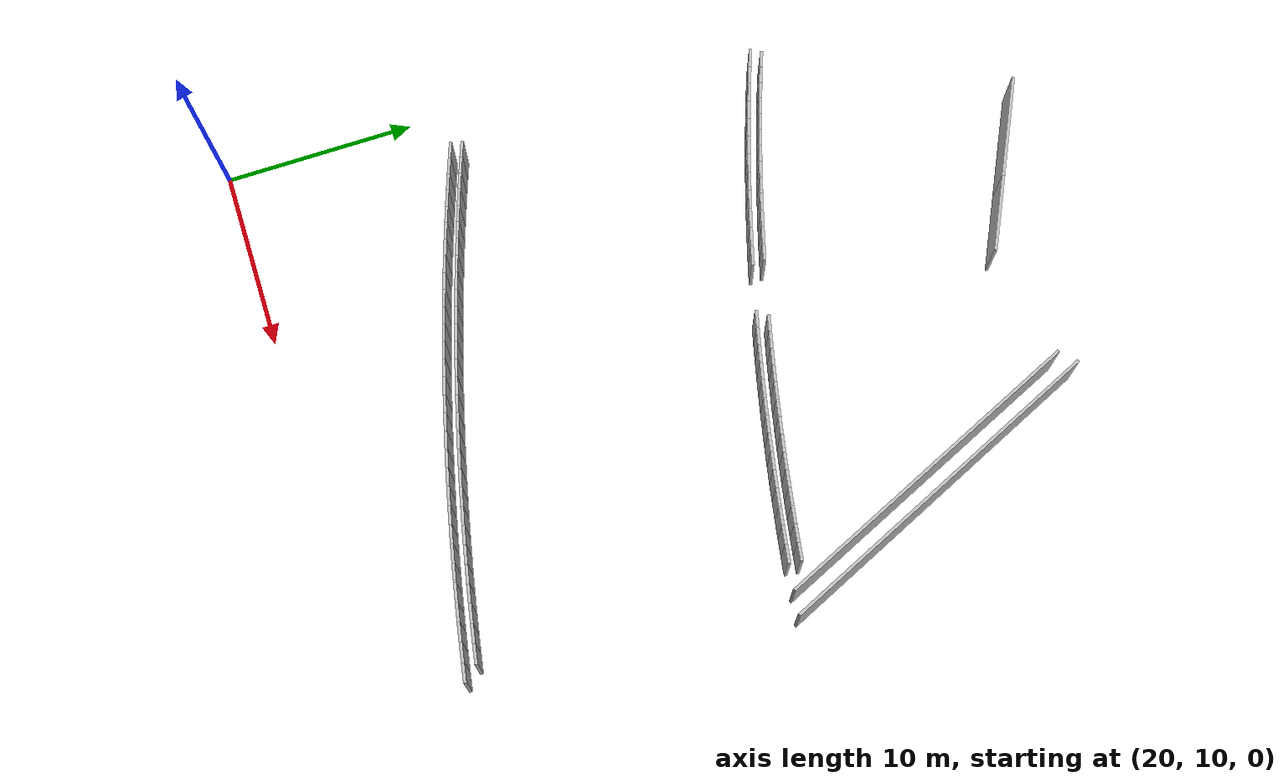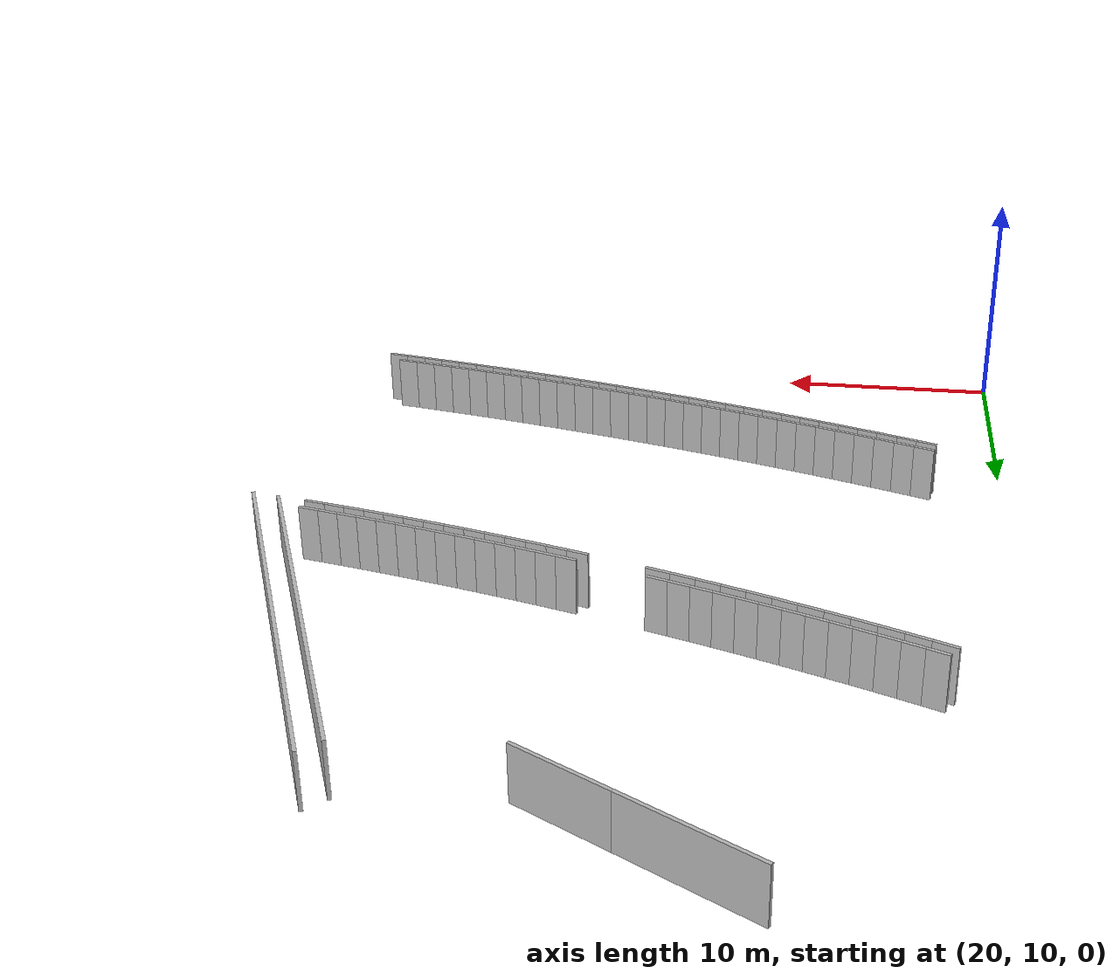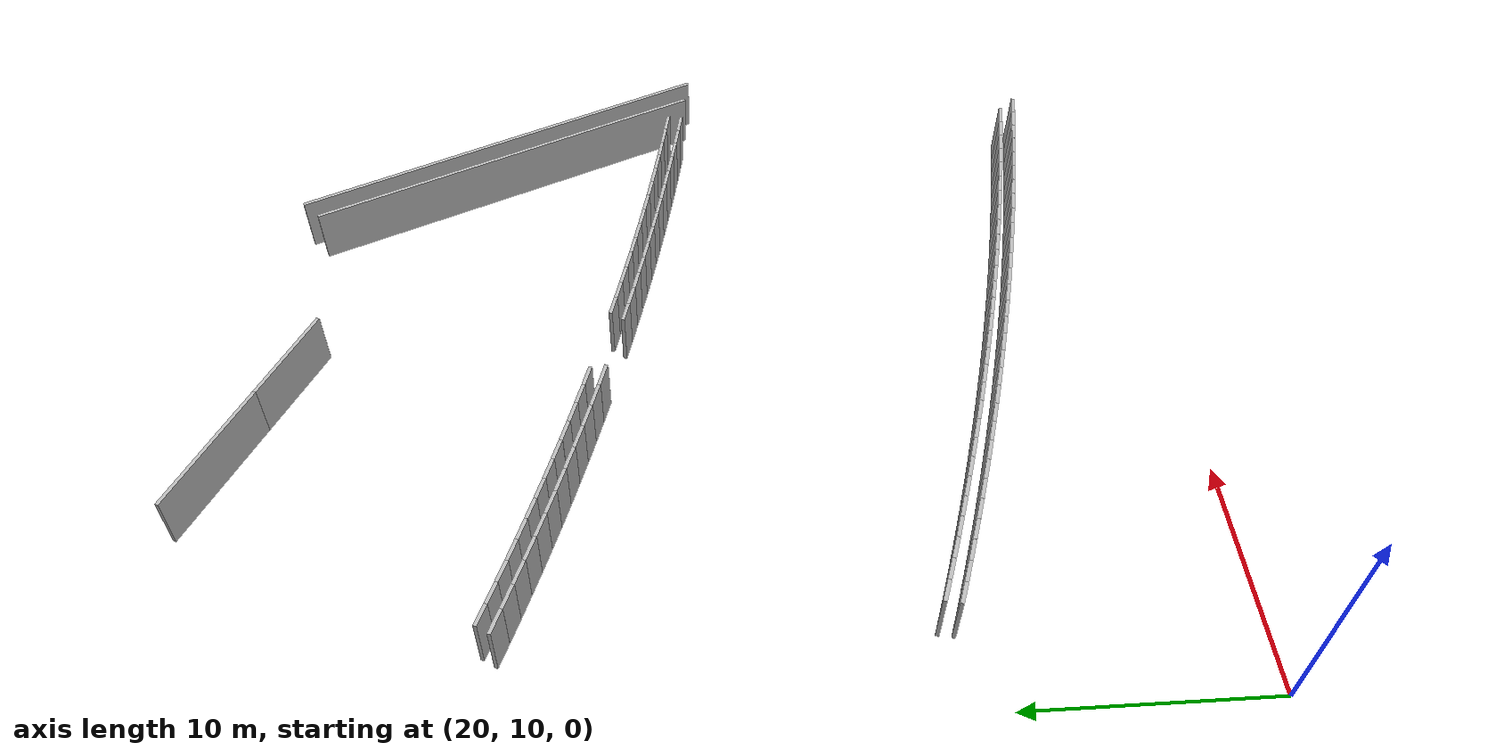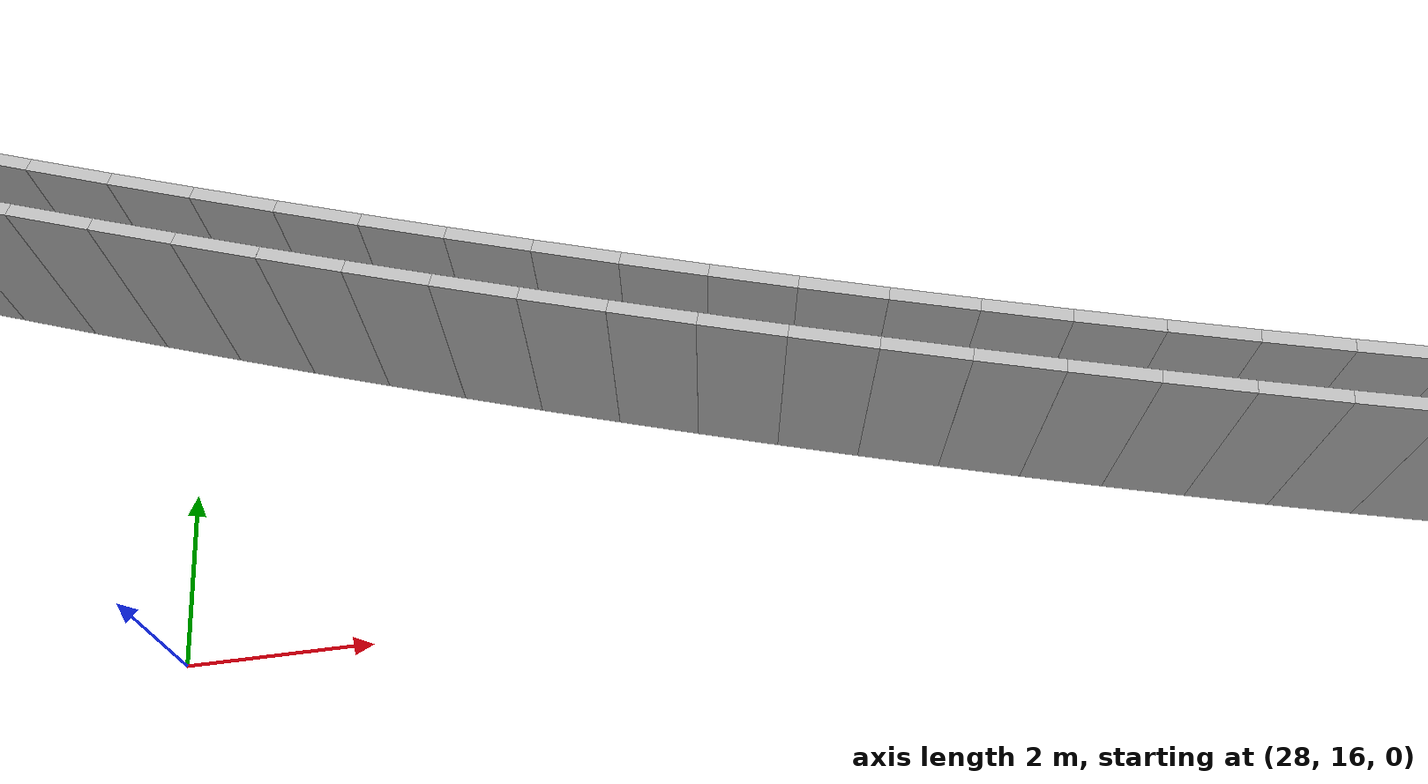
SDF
<sdf version="1.6">
 <model name="sps_0300">
  <static>1</static>
  <allow_auto_disable>0</allow_auto_disable>
  <link name="Wall55">
   <collision name="collision"><geometry><box><size>6.00747 0.15 2.5</size></box></geometry></collision>
   <visual name="visual">
    <geometry><box><size>6.00747 0.15 2.5</size></box></geometry>
    <transparency>0.0</transparency>
   </visual>
   <pose>31.8468 49.6369 1.25 0 0 -0.50919</pose>
  </link>
  <link name="Wall56">
   <collision name="collision"><geometry><box><size>4.34434 0.15 2.5</size></box></geometry></collision>
   <visual name="visual">
    <geometry><box><size>4.34434 0.15 2.5</size></box></geometry>
    <transparency>0.0</transparency>
   </visual>
   <pose>36.3661 47.1138 1.25 0 0 -0.509191</pose>
  </link>
  <link name="Wall9169">
   <collision name="collision"><geometry><box><size>0.950856 0.15 2.5</size></box></geometry></collision>
   <visual name="visual">
    <geometry><box><size>0.950856 0.15 2.5</size></box></geometry>
    <transparency>0.0</transparency>
   </visual>
   <pose>23.7422 38.8181 1.25 0 0 -0.389661</pose>
  </link>
  <link name="Wall9170">
   <collision name="collision"><geometry><box><size>0.950831 0.15 2.5</size></box></geometry></collision>
   <visual name="visual">
    <geometry><box><size>0.950831 0.15 2.5</size></box></geometry>
    <transparency>0.0</transparency>
   </visual>
   <pose>24.6229 38.4597 1.25 0 0 -0.383296</pose>
  </link>
  <link name="Wall9171">
   <collision name="collision"><geometry><box><size>0.950734 0.15 2.5</size></box></geometry></collision>
   <visual name="visual">
    <geometry><box><size>0.950734 0.15 2.5</size></box></geometry>
    <transparency>0.0</transparency>
   </visual>
   <pose>25.506 38.1072 1.25 0 0 -0.376286</pose>
  </link>
  <link name="Wall9172">
   <collision name="collision"><geometry><box><size>0.950793 0.15 2.5</size></box></geometry></collision>
   <visual name="visual">
    <geometry><box><size>0.950793 0.15 2.5</size></box></geometry>
    <transparency>0.0</transparency>
   </visual>
   <pose>26.3914 37.7608 1.25 0 0 -0.369575</pose>
  </link>
  <link name="Wall9173">
   <collision name="collision"><geometry><box><size>0.950746 0.15 2.5</size></box></geometry></collision>
   <visual name="visual">
    <geometry><box><size>0.950746 0.15 2.5</size></box></geometry>
    <transparency>0.0</transparency>
   </visual>
   <pose>27.2791 37.4203 1.25 0 0 -0.362993</pose>
  </link>
  <link name="Wall9174">
   <collision name="collision"><geometry><box><size>0.950933 0.15 2.5</size></box></geometry></collision>
   <visual name="visual">
    <geometry><box><size>0.950933 0.15 2.5</size></box></geometry>
    <transparency>0.0</transparency>
   </visual>
   <pose>28.1691 37.0856 1.25 0 0 -0.356404</pose>
  </link>
  <link name="Wall9175">
   <collision name="collision"><geometry><box><size>0.950692 0.15 2.5</size></box></geometry></collision>
   <visual name="visual">
    <geometry><box><size>0.950692 0.15 2.5</size></box></geometry>
    <transparency>0.0</transparency>
   </visual>
   <pose>29.0612 36.7569 1.25 0 0 -0.349588</pose>
  </link>
  <link name="Wall9176">
   <collision name="collision"><geometry><box><size>0.950766 0.15 2.5</size></box></geometry></collision>
   <visual name="visual">
    <geometry><box><size>0.950766 0.15 2.5</size></box></geometry>
    <transparency>0.0</transparency>
   </visual>
   <pose>29.9556 36.4343 1.25 0 0 -0.342804</pose>
  </link>
  <link name="Wall9177">
   <collision name="collision"><geometry><box><size>0.950789 0.15 2.5</size></box></geometry></collision>
   <visual name="visual">
    <geometry><box><size>0.950789 0.15 2.5</size></box></geometry>
    <transparency>0.0</transparency>
   </visual>
   <pose>30.8521 36.1177 1.25 0 0 -0.336123</pose>
  </link>
  <link name="Wall9178">
   <collision name="collision"><geometry><box><size>0.950912 0.15 2.5</size></box></geometry></collision>
   <visual name="visual">
    <geometry><box><size>0.950912 0.15 2.5</size></box></geometry>
    <transparency>0.0</transparency>
   </visual>
   <pose>31.7508 35.8071 1.25 0 0 -0.329423</pose>
  </link>
  <link name="Wall9179">
   <collision name="collision"><geometry><box><size>0.950884 0.15 2.5</size></box></geometry></collision>
   <visual name="visual">
    <geometry><box><size>0.950884 0.15 2.5</size></box></geometry>
    <transparency>0.0</transparency>
   </visual>
   <pose>32.6515 35.5025 1.25 0 0 -0.322725</pose>
  </link>
  <link name="Wall9180">
   <collision name="collision"><geometry><box><size>0.950744 0.15 2.5</size></box></geometry></collision>
   <visual name="visual">
    <geometry><box><size>0.950744 0.15 2.5</size></box></geometry>
    <transparency>0.0</transparency>
   </visual>
   <pose>33.5543 35.2039 1.25 0 0 -0.316147</pose>
  </link>
  <link name="Wall9181">
   <collision name="collision"><geometry><box><size>0.95088 0.15 2.5</size></box></geometry></collision>
   <visual name="visual">
    <geometry><box><size>0.95088 0.15 2.5</size></box></geometry>
    <transparency>0.0</transparency>
   </visual>
   <pose>34.4589 34.9114 1.25 0 0 -0.309287</pose>
  </link>
  <link name="Wall9246">
   <collision name="collision"><geometry><box><size>0.939736 0.15 2.5</size></box></geometry></collision>
   <visual name="visual">
    <geometry><box><size>0.939736 0.15 2.5</size></box></geometry>
    <transparency>0.0</transparency>
   </visual>
   <pose>23.5387 21.5267 1.25 0 0 -0.349276</pose>
  </link>
  <link name="Wall9247">
   <collision name="collision"><geometry><box><size>0.939467 0.15 2.5</size></box></geometry></collision>
   <visual name="visual">
    <geometry><box><size>0.939467 0.15 2.5</size></box></geometry>
    <transparency>0.0</transparency>
   </visual>
   <pose>24.4225 21.2077 1.25 0 0 -0.343509</pose>
  </link>
  <link name="Wall9248">
   <collision name="collision"><geometry><box><size>0.939864 0.15 2.5</size></box></geometry></collision>
   <visual name="visual">
    <geometry><box><size>0.939864 0.15 2.5</size></box></geometry>
    <transparency>0.0</transparency>
   </visual>
   <pose>25.3082 20.8939 1.25 0 0 -0.337502</pose>
  </link>
  <link name="Wall9249">
   <collision name="collision"><geometry><box><size>0.939601 0.15 2.5</size></box></geometry></collision>
   <visual name="visual">
    <geometry><box><size>0.939601 0.15 2.5</size></box></geometry>
    <transparency>0.0</transparency>
   </visual>
   <pose>26.1959 20.5853 1.25 0 0 -0.331755</pose>
  </link>
  <link name="Wall9250">
   <collision name="collision"><geometry><box><size>0.93958 0.15 2.5</size></box></geometry></collision>
   <visual name="visual">
    <geometry><box><size>0.93958 0.15 2.5</size></box></geometry>
    <transparency>0.0</transparency>
   </visual>
   <pose>27.0851 20.282 1.25 0 0 -0.325654</pose>
  </link>
  <link name="Wall9251">
   <collision name="collision"><geometry><box><size>0.939769 0.15 2.5</size></box></geometry></collision>
   <visual name="visual">
    <geometry><box><size>0.939769 0.15 2.5</size></box></geometry>
    <transparency>0.0</transparency>
   </visual>
   <pose>27.9763 19.9841 1.25 0 0 -0.319491</pose>
  </link>
  <link name="Wall9252">
   <collision name="collision"><geometry><box><size>0.939661 0.15 2.5</size></box></geometry></collision>
   <visual name="visual">
    <geometry><box><size>0.939661 0.15 2.5</size></box></geometry>
    <transparency>0.0</transparency>
   </visual>
   <pose>28.8693 19.6915 1.25 0 0 -0.313719</pose>
  </link>
  <link name="Wall9253">
   <collision name="collision"><geometry><box><size>0.939763 0.15 2.5</size></box></geometry></collision>
   <visual name="visual">
    <geometry><box><size>0.939763 0.15 2.5</size></box></geometry>
    <transparency>0.0</transparency>
   </visual>
   <pose>29.7641 19.4042 1.25 0 0 -0.307681</pose>
  </link>
  <link name="Wall9254">
   <collision name="collision"><geometry><box><size>0.939661 0.15 2.5</size></box></geometry></collision>
   <visual name="visual">
    <geometry><box><size>0.939661 0.15 2.5</size></box></geometry>
    <transparency>0.0</transparency>
   </visual>
   <pose>30.6605 19.1222 1.25 0 0 -0.301928</pose>
  </link>
  <link name="Wall9255">
   <collision name="collision"><geometry><box><size>0.93987 0.15 2.5</size></box></geometry></collision>
   <visual name="visual">
    <geometry><box><size>0.93987 0.15 2.5</size></box></geometry>
    <transparency>0.0</transparency>
   </visual>
   <pose>31.5586 18.8455 1.25 0 0 -0.295811</pose>
  </link>
  <link name="Wall9256">
   <collision name="collision"><geometry><box><size>0.939605 0.15 2.5</size></box></geometry></collision>
   <visual name="visual">
    <geometry><box><size>0.939605 0.15 2.5</size></box></geometry>
    <transparency>0.0</transparency>
   </visual>
   <pose>32.4583 18.5742 1.25 0 0 -0.289926</pose>
  </link>
  <link name="Wall9257">
   <collision name="collision"><geometry><box><size>0.939834 0.15 2.5</size></box></geometry></collision>
   <visual name="visual">
    <geometry><box><size>0.939834 0.15 2.5</size></box></geometry>
    <transparency>0.0</transparency>
   </visual>
   <pose>33.3595 18.3082 1.25 0 0 -0.284098</pose>
  </link>
  <link name="Wall9258">
   <collision name="collision"><geometry><box><size>0.939491 0.15 2.5</size></box></geometry></collision>
   <visual name="visual">
    <geometry><box><size>0.939491 0.15 2.5</size></box></geometry>
    <transparency>0.0</transparency>
   </visual>
   <pose>34.2624 18.0476 1.25 0 0 -0.277916</pose>
  </link>
  <link name="Wall9259">
   <collision name="collision"><geometry><box><size>0.939802 0.15 2.5</size></box></geometry></collision>
   <visual name="visual">
    <geometry><box><size>0.939802 0.15 2.5</size></box></geometry>
    <transparency>0.0</transparency>
   </visual>
   <pose>35.1667 17.7924 1.25 0 0 -0.272153</pose>
  </link>
  <link name="Wall9260">
   <collision name="collision"><geometry><box><size>0.939604 0.15 2.5</size></box></geometry></collision>
   <visual name="visual">
    <geometry><box><size>0.939604 0.15 2.5</size></box></geometry>
    <transparency>0.0</transparency>
   </visual>
   <pose>36.0726 17.5426 1.25 0 0 -0.266013</pose>
  </link>
  <link name="Wall9261">
   <collision name="collision"><geometry><box><size>0.93983 0.15 2.5</size></box></geometry></collision>
   <visual name="visual">
    <geometry><box><size>0.93983 0.15 2.5</size></box></geometry>
    <transparency>0.0</transparency>
   </visual>
   <pose>36.9799 17.2982 1.25 0 0 -0.260163</pose>
  </link>
  <link name="Wall9262">
   <collision name="collision"><geometry><box><size>0.93966 0.15 2.5</size></box></geometry></collision>
   <visual name="visual">
    <geometry><box><size>0.93966 0.15 2.5</size></box></geometry>
    <transparency>0.0</transparency>
   </visual>
   <pose>37.8888 17.0591 1.25 0 0 -0.254368</pose>
  </link>
  <link name="Wall9263">
   <collision name="collision"><geometry><box><size>0.939594 0.15 2.5</size></box></geometry></collision>
   <visual name="visual">
    <geometry><box><size>0.939594 0.15 2.5</size></box></geometry>
    <transparency>0.0</transparency>
   </visual>
   <pose>38.7989 16.8254 1.25 0 0 -0.24835</pose>
  </link>
  <link name="Wall9264">
   <collision name="collision"><geometry><box><size>0.939903 0.15 2.5</size></box></geometry></collision>
   <visual name="visual">
    <geometry><box><size>0.939903 0.15 2.5</size></box></geometry>
    <transparency>0.0</transparency>
   </visual>
   <pose>39.7104 16.5971 1.25 0 0 -0.242443</pose>
  </link>
  <link name="Wall9265">
   <collision name="collision"><geometry><box><size>0.939505 0.15 2.5</size></box></geometry></collision>
   <visual name="visual">
    <geometry><box><size>0.939505 0.15 2.5</size></box></geometry>
    <transparency>0.0</transparency>
   </visual>
   <pose>40.6233 16.3743 1.25 0 0 -0.236328</pose>
  </link>
  <link name="Wall9266">
   <collision name="collision"><geometry><box><size>0.939629 0.15 2.5</size></box></geometry></collision>
   <visual name="visual">
    <geometry><box><size>0.939629 0.15 2.5</size></box></geometry>
    <transparency>0.0</transparency>
   </visual>
   <pose>41.5374 16.157 1.25 0 0 -0.230421</pose>
  </link>
  <link name="Wall9267">
   <collision name="collision"><geometry><box><size>0.939785 0.15 2.5</size></box></geometry></collision>
   <visual name="visual">
    <geometry><box><size>0.939785 0.15 2.5</size></box></geometry>
    <transparency>0.0</transparency>
   </visual>
   <pose>42.4529 15.9451 1.25 0 0 -0.224516</pose>
  </link>
  <link name="Wall9268">
   <collision name="collision"><geometry><box><size>0.939604 0.15 2.5</size></box></geometry></collision>
   <visual name="visual">
    <geometry><box><size>0.939604 0.15 2.5</size></box></geometry>
    <transparency>0.0</transparency>
   </visual>
   <pose>43.3697 15.7386 1.25 0 0 -0.218634</pose>
  </link>
  <link name="Wall9269">
   <collision name="collision"><geometry><box><size>0.939753 0.15 2.5</size></box></geometry></collision>
   <visual name="visual">
    <geometry><box><size>0.939753 0.15 2.5</size></box></geometry>
    <transparency>0.0</transparency>
   </visual>
   <pose>44.2876 15.5375 1.25 0 0 -0.212681</pose>
  </link>
  <link name="Wall9270">
   <collision name="collision"><geometry><box><size>0.939612 0.15 2.5</size></box></geometry></collision>
   <visual name="visual">
    <geometry><box><size>0.939612 0.15 2.5</size></box></geometry>
    <transparency>0.0</transparency>
   </visual>
   <pose>45.2067 15.3419 1.25 0 0 -0.20667</pose>
  </link>
  <link name="Wall9271">
   <collision name="collision"><geometry><box><size>0.939649 0.15 2.5</size></box></geometry></collision>
   <visual name="visual">
    <geometry><box><size>0.939649 0.15 2.5</size></box></geometry>
    <transparency>0.0</transparency>
   </visual>
   <pose>46.1269 15.1518 1.25 0 0 -0.200759</pose>
  </link>
  <link name="Wall9272">
   <collision name="collision"><geometry><box><size>0.939754 0.15 2.5</size></box></geometry></collision>
   <visual name="visual">
    <geometry><box><size>0.939754 0.15 2.5</size></box></geometry>
    <transparency>0.0</transparency>
   </visual>
   <pose>47.0482 14.9672 1.25 0 0 -0.194708</pose>
  </link>
  <link name="Wall9273">
   <collision name="collision"><geometry><box><size>0.939738 0.15 2.5</size></box></geometry></collision>
   <visual name="visual">
    <geometry><box><size>0.939738 0.15 2.5</size></box></geometry>
    <transparency>0.0</transparency>
   </visual>
   <pose>47.9708 14.7881 1.25 0 0 -0.188823</pose>
  </link>
  <link name="Wall9274">
   <collision name="collision"><geometry><box><size>0.939671 0.15 2.5</size></box></geometry></collision>
   <visual name="visual">
    <geometry><box><size>0.939671 0.15 2.5</size></box></geometry>
    <transparency>0.0</transparency>
   </visual>
   <pose>48.8943 14.6145 1.25 0 0 -0.182822</pose>
  </link>
  <link name="Wall9275">
   <collision name="collision"><geometry><box><size>0.939873 0.15 2.5</size></box></geometry></collision>
   <visual name="visual">
    <geometry><box><size>0.939873 0.15 2.5</size></box></geometry>
    <transparency>0.0</transparency>
   </visual>
   <pose>49.8189 14.4463 1.25 0 0 -0.177106</pose>
  </link>
  <link name="Wall9284">
   <collision name="collision"><geometry><box><size>0.927808 0.15 2.5</size></box></geometry></collision>
   <visual name="visual">
    <geometry><box><size>0.927808 0.15 2.5</size></box></geometry>
    <transparency>0.0</transparency>
   </visual>
   <pose>37.8124 33.2596 1.25 0 0 -0.28336</pose>
  </link>
  <link name="Wall9285">
   <collision name="collision"><geometry><box><size>0.928191 0.15 2.5</size></box></geometry></collision>
   <visual name="visual">
    <geometry><box><size>0.928191 0.15 2.5</size></box></geometry>
    <transparency>0.0</transparency>
   </visual>
   <pose>38.7042 33.003 1.25 0 0 -0.276945</pose>
  </link>
  <link name="Wall9286">
   <collision name="collision"><geometry><box><size>0.927926 0.15 2.5</size></box></geometry></collision>
   <visual name="visual">
    <geometry><box><size>0.927926 0.15 2.5</size></box></geometry>
    <transparency>0.0</transparency>
   </visual>
   <pose>39.5978 32.7522 1.25 0 0 -0.270331</pose>
  </link>
  <link name="Wall9287">
   <collision name="collision"><geometry><box><size>0.928103 0.15 2.5</size></box></geometry></collision>
   <visual name="visual">
    <geometry><box><size>0.928103 0.15 2.5</size></box></geometry>
    <transparency>0.0</transparency>
   </visual>
   <pose>40.4929 32.5073 1.25 0 0 -0.263801</pose>
  </link>
  <link name="Wall9288">
   <collision name="collision"><geometry><box><size>0.927965 0.15 2.5</size></box></geometry></collision>
   <visual name="visual">
    <geometry><box><size>0.927965 0.15 2.5</size></box></geometry>
    <transparency>0.0</transparency>
   </visual>
   <pose>41.3896 32.2682 1.25 0 0 -0.257374</pose>
  </link>
  <link name="Wall9289">
   <collision name="collision"><geometry><box><size>0.928221 0.15 2.5</size></box></geometry></collision>
   <visual name="visual">
    <geometry><box><size>0.928221 0.15 2.5</size></box></geometry>
    <transparency>0.0</transparency>
   </visual>
   <pose>42.2879 32.0349 1.25 0 0 -0.250848</pose>
  </link>
  <link name="Wall9290">
   <collision name="collision"><geometry><box><size>0.927939 0.15 2.5</size></box></geometry></collision>
   <visual name="visual">
    <geometry><box><size>0.927939 0.15 2.5</size></box></geometry>
    <transparency>0.0</transparency>
   </visual>
   <pose>43.1876 31.8075 1.25 0 0 -0.244277</pose>
  </link>
  <link name="Wall9291">
   <collision name="collision"><geometry><box><size>0.927903 0.15 2.5</size></box></geometry></collision>
   <visual name="visual">
    <geometry><box><size>0.927903 0.15 2.5</size></box></geometry>
    <transparency>0.0</transparency>
   </visual>
   <pose>44.0887 31.586 1.25 0 0 -0.237784</pose>
  </link>
  <link name="Wall9292">
   <collision name="collision"><geometry><box><size>0.928117 0.15 2.5</size></box></geometry></collision>
   <visual name="visual">
    <geometry><box><size>0.928117 0.15 2.5</size></box></geometry>
    <transparency>0.0</transparency>
   </visual>
   <pose>44.9914 31.3704 1.25 0 0 -0.231102</pose>
  </link>
  <link name="Wall9293">
   <collision name="collision"><geometry><box><size>0.928128 0.15 2.5</size></box></geometry></collision>
   <visual name="visual">
    <geometry><box><size>0.928128 0.15 2.5</size></box></geometry>
    <transparency>0.0</transparency>
   </visual>
   <pose>45.8955 31.1607 1.25 0 0 -0.224753</pose>
  </link>
  <link name="Wall9294">
   <collision name="collision"><geometry><box><size>0.928032 0.15 2.5</size></box></geometry></collision>
   <visual name="visual">
    <geometry><box><size>0.928032 0.15 2.5</size></box></geometry>
    <transparency>0.0</transparency>
   </visual>
   <pose>46.8009 30.9568 1.25 0 0 -0.218305</pose>
  </link>
  <link name="Wall9295">
   <collision name="collision"><geometry><box><size>0.927889 0.15 2.5</size></box></geometry></collision>
   <visual name="visual">
    <geometry><box><size>0.927889 0.15 2.5</size></box></geometry>
    <transparency>0.0</transparency>
   </visual>
   <pose>47.7075 30.7588 1.25 0 0 -0.211741</pose>
  </link>
  <link name="Wall9296">
   <collision name="collision"><geometry><box><size>0.927892 0.15 2.5</size></box></geometry></collision>
   <visual name="visual">
    <geometry><box><size>0.927892 0.15 2.5</size></box></geometry>
    <transparency>0.0</transparency>
   </visual>
   <pose>48.6153 30.5668 1.25 0 0 -0.205084</pose>
  </link>
  <link name="Wall9297">
   <collision name="collision"><geometry><box><size>0.928057 0.15 2.5</size></box></geometry></collision>
   <visual name="visual">
    <geometry><box><size>0.928057 0.15 2.5</size></box></geometry>
    <transparency>0.0</transparency>
   </visual>
   <pose>49.5244 30.3807 1.25 0 0 -0.198737</pose>
  </link>
  <link name="Wall12824">
   <collision name="collision"><geometry><box><size>19.0263 0.15 2.5</size></box></geometry></collision>
   <visual name="visual">
    <geometry><box><size>19.0263 0.15 2.5</size></box></geometry>
    <transparency>0.0</transparency>
   </visual>
   <pose>48.7869 38.6266 1.25 0 0 -1.18017</pose>
  </link>
  <link name="Wall16635">
   <collision name="collision"><geometry><box><size>18.0306 0.15 2.5</size></box></geometry></collision>
   <visual name="visual">
    <geometry><box><size>18.0306 0.15 2.5</size></box></geometry>
    <transparency>0.0</transparency>
   </visual>
   <pose>47.8064 38.3819 1.25 0 0 -1.18018</pose>
  </link>
  <link name="Wall19048">
   <collision name="collision"><geometry><box><size>1.06678 0.15 2.5</size></box></geometry></collision>
   <visual name="visual">
    <geometry><box><size>1.06678 0.15 2.5</size></box></geometry>
    <transparency>0.0</transparency>
   </visual>
   <pose>23.4436 38.2924 1.25 0 0 -0.390249</pose>
  </link>
  <link name="Wall19049">
   <collision name="collision"><geometry><box><size>1.06657 0.15 2.5</size></box></geometry></collision>
   <visual name="visual">
    <geometry><box><size>1.06657 0.15 2.5</size></box></geometry>
    <transparency>0.0</transparency>
   </visual>
   <pose>24.4315 37.8903 1.25 0 0 -0.382791</pose>
  </link>
  <link name="Wall19050">
   <collision name="collision"><geometry><box><size>1.0667 0.15 2.5</size></box></geometry></collision>
   <visual name="visual">
    <geometry><box><size>1.0667 0.15 2.5</size></box></geometry>
    <transparency>0.0</transparency>
   </visual>
   <pose>25.4224 37.4956 1.25 0 0 -0.375353</pose>
  </link>
  <link name="Wall19051">
   <collision name="collision"><geometry><box><size>1.06676 0.15 2.5</size></box></geometry></collision>
   <visual name="visual">
    <geometry><box><size>1.06676 0.15 2.5</size></box></geometry>
    <transparency>0.0</transparency>
   </visual>
   <pose>26.4164 37.1083 1.25 0 0 -0.367778</pose>
  </link>
  <link name="Wall19052">
   <collision name="collision"><geometry><box><size>1.06689 0.15 2.5</size></box></geometry></collision>
   <visual name="visual">
    <geometry><box><size>1.06689 0.15 2.5</size></box></geometry>
    <transparency>0.0</transparency>
   </visual>
   <pose>27.4133 36.7284 1.25 0 0 -0.360384</pose>
  </link>
  <link name="Wall19053">
   <collision name="collision"><geometry><box><size>1.06674 0.15 2.5</size></box></geometry></collision>
   <visual name="visual">
    <geometry><box><size>1.06674 0.15 2.5</size></box></geometry>
    <transparency>0.0</transparency>
   </visual>
   <pose>28.413 36.356 1.25 0 0 -0.352804</pose>
  </link>
  <link name="Wall19054">
   <collision name="collision"><geometry><box><size>1.0668 0.15 2.5</size></box></geometry></collision>
   <visual name="visual">
    <geometry><box><size>1.0668 0.15 2.5</size></box></geometry>
    <transparency>0.0</transparency>
   </visual>
   <pose>29.4154 35.9911 1.25 0 0 -0.345418</pose>
  </link>
  <link name="Wall19055">
   <collision name="collision"><geometry><box><size>1.06673 0.15 2.5</size></box></geometry></collision>
   <visual name="visual">
    <geometry><box><size>1.06673 0.15 2.5</size></box></geometry>
    <transparency>0.0</transparency>
   </visual>
   <pose>30.4205 35.6337 1.25 0 0 -0.337909</pose>
  </link>
  <link name="Wall19056">
   <collision name="collision"><geometry><box><size>1.06671 0.15 2.5</size></box></geometry></collision>
   <visual name="visual">
    <geometry><box><size>1.06671 0.15 2.5</size></box></geometry>
    <transparency>0.0</transparency>
   </visual>
   <pose>31.4282 35.2838 1.25 0 0 -0.330526</pose>
  </link>
  <link name="Wall19057">
   <collision name="collision"><geometry><box><size>1.06669 0.15 2.5</size></box></geometry></collision>
   <visual name="visual">
    <geometry><box><size>1.06669 0.15 2.5</size></box></geometry>
    <transparency>0.0</transparency>
   </visual>
   <pose>32.4384 34.9415 1.25 0 0 -0.3228</pose>
  </link>
  <link name="Wall19058">
   <collision name="collision"><geometry><box><size>1.06687 0.15 2.5</size></box></geometry></collision>
   <visual name="visual">
    <geometry><box><size>1.06687 0.15 2.5</size></box></geometry>
    <transparency>0.0</transparency>
   </visual>
   <pose>33.4513 34.6068 1.25 0 0 -0.315455</pose>
  </link>
  <link name="Wall19059">
   <collision name="collision"><geometry><box><size>1.06681 0.15 2.5</size></box></geometry></collision>
   <visual name="visual">
    <geometry><box><size>1.06681 0.15 2.5</size></box></geometry>
    <transparency>0.0</transparency>
   </visual>
   <pose>34.4668 34.2796 1.25 0 0 -0.308018</pose>
  </link>
  <link name="Wall24650">
   <collision name="collision"><geometry><box><size>0.945103 0.15 2.5</size></box></geometry></collision>
   <visual name="visual">
    <geometry><box><size>0.945103 0.15 2.5</size></box></geometry>
    <transparency>0.0</transparency>
   </visual>
   <pose>23.6682 22.1187 1.25 0 0 -0.349957</pose>
  </link>
  <link name="Wall24651">
   <collision name="collision"><geometry><box><size>0.945092 0.15 2.5</size></box></geometry></collision>
   <visual name="visual">
    <geometry><box><size>0.945092 0.15 2.5</size></box></geometry>
    <transparency>0.0</transparency>
   </visual>
   <pose>24.557 21.7974 1.25 0 0 -0.343849</pose>
  </link>
  <link name="Wall24652">
   <collision name="collision"><geometry><box><size>0.945002 0.15 2.5</size></box></geometry></collision>
   <visual name="visual">
    <geometry><box><size>0.945002 0.15 2.5</size></box></geometry>
    <transparency>0.0</transparency>
   </visual>
   <pose>25.4477 21.4815 1.25 0 0 -0.337784</pose>
  </link>
  <link name="Wall24653">
   <collision name="collision"><geometry><box><size>0.9452 0.15 2.5</size></box></geometry></collision>
   <visual name="visual">
    <geometry><box><size>0.9452 0.15 2.5</size></box></geometry>
    <transparency>0.0</transparency>
   </visual>
   <pose>26.3403 21.1709 1.25 0 0 -0.331899</pose>
  </link>
  <link name="Wall24654">
   <collision name="collision"><geometry><box><size>0.945045 0.15 2.5</size></box></geometry></collision>
   <visual name="visual">
    <geometry><box><size>0.945045 0.15 2.5</size></box></geometry>
    <transparency>0.0</transparency>
   </visual>
   <pose>27.2347 20.8655 1.25 0 0 -0.326223</pose>
  </link>
  <link name="Wall24655">
   <collision name="collision"><geometry><box><size>0.945037 0.15 2.5</size></box></geometry></collision>
   <visual name="visual">
    <geometry><box><size>0.945037 0.15 2.5</size></box></geometry>
    <transparency>0.0</transparency>
   </visual>
   <pose>28.1309 20.5656 1.25 0 0 -0.319688</pose>
  </link>
  <link name="Wall24656">
   <collision name="collision"><geometry><box><size>0.9452 0.15 2.5</size></box></geometry></collision>
   <visual name="visual">
    <geometry><box><size>0.9452 0.15 2.5</size></box></geometry>
    <transparency>0.0</transparency>
   </visual>
   <pose>29.029 20.2712 1.25 0 0 -0.313787</pose>
  </link>
  <link name="Wall24657">
   <collision name="collision"><geometry><box><size>0.945203 0.15 2.5</size></box></geometry></collision>
   <visual name="visual">
    <geometry><box><size>0.945203 0.15 2.5</size></box></geometry>
    <transparency>0.0</transparency>
   </visual>
   <pose>29.9289 19.9821 1.25 0 0 -0.307885</pose>
  </link>
  <link name="Wall24658">
   <collision name="collision"><geometry><box><size>0.945145 0.15 2.5</size></box></geometry></collision>
   <visual name="visual">
    <geometry><box><size>0.945145 0.15 2.5</size></box></geometry>
    <transparency>0.0</transparency>
   </visual>
   <pose>30.8304 19.6984 1.25 0 0 -0.301879</pose>
  </link>
  <link name="Wall24659">
   <collision name="collision"><geometry><box><size>0.945115 0.15 2.5</size></box></geometry></collision>
   <visual name="visual">
    <geometry><box><size>0.945115 0.15 2.5</size></box></geometry>
    <transparency>0.0</transparency>
   </visual>
   <pose>31.7336 19.42 1.25 0 0 -0.296077</pose>
  </link>
  <link name="Wall24660">
   <collision name="collision"><geometry><box><size>0.945089 0.15 2.5</size></box></geometry></collision>
   <visual name="visual">
    <geometry><box><size>0.945089 0.15 2.5</size></box></geometry>
    <transparency>0.0</transparency>
   </visual>
   <pose>32.6384 19.147 1.25 0 0 -0.289947</pose>
  </link>
  <link name="Wall24661">
   <collision name="collision"><geometry><box><size>0.945215 0.15 2.5</size></box></geometry></collision>
   <visual name="visual">
    <geometry><box><size>0.945215 0.15 2.5</size></box></geometry>
    <transparency>0.0</transparency>
   </visual>
   <pose>33.545 18.8796 1.25 0 0 -0.283781</pose>
  </link>
  <link name="Wall24662">
   <collision name="collision"><geometry><box><size>0.94505 0.15 2.5</size></box></geometry></collision>
   <visual name="visual">
    <geometry><box><size>0.94505 0.15 2.5</size></box></geometry>
    <transparency>0.0</transparency>
   </visual>
   <pose>34.4531 18.6176 1.25 0 0 -0.278051</pose>
  </link>
  <link name="Wall24663">
   <collision name="collision"><geometry><box><size>0.945062 0.15 2.5</size></box></geometry></collision>
   <visual name="visual">
    <geometry><box><size>0.945062 0.15 2.5</size></box></geometry>
    <transparency>0.0</transparency>
   </visual>
   <pose>35.3626 18.3611 1.25 0 0 -0.271673</pose>
  </link>
  <link name="Wall24664">
   <collision name="collision"><geometry><box><size>0.945257 0.15 2.5</size></box></geometry></collision>
   <visual name="visual">
    <geometry><box><size>0.945257 0.15 2.5</size></box></geometry>
    <transparency>0.0</transparency>
   </visual>
   <pose>36.2739 18.1101 1.25 0 0 -0.265856</pose>
  </link>
  <link name="Wall24665">
   <collision name="collision"><geometry><box><size>0.945111 0.15 2.5</size></box></geometry></collision>
   <visual name="visual">
    <geometry><box><size>0.945111 0.15 2.5</size></box></geometry>
    <transparency>0.0</transparency>
   </visual>
   <pose>37.1866 17.8645 1.25 0 0 -0.259812</pose>
  </link>
  <link name="Wall24666">
   <collision name="collision"><geometry><box><size>0.945058 0.15 2.5</size></box></geometry></collision>
   <visual name="visual">
    <geometry><box><size>0.945058 0.15 2.5</size></box></geometry>
    <transparency>0.0</transparency>
   </visual>
   <pose>38.1007 17.6245 1.25 0 0 -0.253751</pose>
  </link>
  <link name="Wall24667">
   <collision name="collision"><geometry><box><size>0.945115 0.15 2.5</size></box></geometry></collision>
   <visual name="visual">
    <geometry><box><size>0.945115 0.15 2.5</size></box></geometry>
    <transparency>0.0</transparency>
   </visual>
   <pose>39.0162 17.3899 1.25 0 0 -0.248002</pose>
  </link>
  <link name="Wall24668">
   <collision name="collision"><geometry><box><size>0.945071 0.15 2.5</size></box></geometry></collision>
   <visual name="visual">
    <geometry><box><size>0.945071 0.15 2.5</size></box></geometry>
    <transparency>0.0</transparency>
   </visual>
   <pose>39.9331 17.1608 1.25 0 0 -0.241689</pose>
  </link>
  <link name="Wall24669">
   <collision name="collision"><geometry><box><size>0.945208 0.15 2.5</size></box></geometry></collision>
   <visual name="visual">
    <geometry><box><size>0.945208 0.15 2.5</size></box></geometry>
    <transparency>0.0</transparency>
   </visual>
   <pose>40.8514 16.9372 1.25 0 0 -0.236005</pose>
  </link>
  <link name="Wall24670">
   <collision name="collision"><geometry><box><size>0.94504 0.15 2.5</size></box></geometry></collision>
   <visual name="visual">
    <geometry><box><size>0.94504 0.15 2.5</size></box></geometry>
    <transparency>0.0</transparency>
   </visual>
   <pose>41.771 16.719 1.25 0 0 -0.229941</pose>
  </link>
  <link name="Wall24671">
   <collision name="collision"><geometry><box><size>0.945163 0.15 2.5</size></box></geometry></collision>
   <visual name="visual">
    <geometry><box><size>0.945163 0.15 2.5</size></box></geometry>
    <transparency>0.0</transparency>
   </visual>
   <pose>42.6919 16.5065 1.25 0 0 -0.223614</pose>
  </link>
  <link name="Wall24672">
   <collision name="collision"><geometry><box><size>0.945337 0.15 2.5</size></box></geometry></collision>
   <visual name="visual">
    <geometry><box><size>0.945337 0.15 2.5</size></box></geometry>
    <transparency>0.0</transparency>
   </visual>
   <pose>43.6142 16.2995 1.25 0 0 -0.217948</pose>
  </link>
  <link name="Wall24673">
   <collision name="collision"><geometry><box><size>0.944936 0.15 2.5</size></box></geometry></collision>
   <visual name="visual">
    <geometry><box><size>0.944936 0.15 2.5</size></box></geometry>
    <transparency>0.0</transparency>
   </visual>
   <pose>44.5376 16.098 1.25 0 0 -0.211761</pose>
  </link>
  <link name="Wall24674">
   <collision name="collision"><geometry><box><size>0.945161 0.15 2.5</size></box></geometry></collision>
   <visual name="visual">
    <geometry><box><size>0.945161 0.15 2.5</size></box></geometry>
    <transparency>0.0</transparency>
   </visual>
   <pose>45.4621 15.902 1.25 0 0 -0.206033</pose>
  </link>
  <link name="Wall24675">
   <collision name="collision"><geometry><box><size>0.9452 0.15 2.5</size></box></geometry></collision>
   <visual name="visual">
    <geometry><box><size>0.9452 0.15 2.5</size></box></geometry>
    <transparency>0.0</transparency>
   </visual>
   <pose>46.3878 15.7115 1.25 0 0 -0.199827</pose>
  </link>
  <link name="Wall24676">
   <collision name="collision"><geometry><box><size>0.94512 0.15 2.5</size></box></geometry></collision>
   <visual name="visual">
    <geometry><box><size>0.94512 0.15 2.5</size></box></geometry>
    <transparency>0.0</transparency>
   </visual>
   <pose>47.3148 15.5267 1.25 0 0 -0.193786</pose>
  </link>
  <link name="Wall24677">
   <collision name="collision"><geometry><box><size>0.945014 0.15 2.5</size></box></geometry></collision>
   <visual name="visual">
    <geometry><box><size>0.945014 0.15 2.5</size></box></geometry>
    <transparency>0.0</transparency>
   </visual>
   <pose>48.2427 15.3475 1.25 0 0 -0.187756</pose>
  </link>
  <link name="Wall24678">
   <collision name="collision"><geometry><box><size>0.945167 0.15 2.5</size></box></geometry></collision>
   <visual name="visual">
    <geometry><box><size>0.945167 0.15 2.5</size></box></geometry>
    <transparency>0.0</transparency>
   </visual>
   <pose>49.1717 15.1738 1.25 0 0 -0.181944</pose>
  </link>
  <link name="Wall27619">
   <collision name="collision"><geometry><box><size>0.903605 0.15 2.5</size></box></geometry></collision>
   <visual name="visual">
    <geometry><box><size>0.903605 0.15 2.5</size></box></geometry>
    <transparency>0.0</transparency>
   </visual>
   <pose>38.2153 33.7671 1.25 0 0 -0.281733</pose>
  </link>
  <link name="Wall27620">
   <collision name="collision"><geometry><box><size>0.903822 0.15 2.5</size></box></geometry></collision>
   <visual name="visual">
    <geometry><box><size>0.903822 0.15 2.5</size></box></geometry>
    <transparency>0.0</transparency>
   </visual>
   <pose>39.0842 33.5187 1.25 0 0 -0.275201</pose>
  </link>
  <link name="Wall27621">
   <collision name="collision"><geometry><box><size>0.903666 0.15 2.5</size></box></geometry></collision>
   <visual name="visual">
    <geometry><box><size>0.903666 0.15 2.5</size></box></geometry>
    <transparency>0.0</transparency>
   </visual>
   <pose>39.9547 33.2759 1.25 0 0 -0.268799</pose>
  </link>
  <link name="Wall27622">
   <collision name="collision"><geometry><box><size>0.903787 0.15 2.5</size></box></geometry></collision>
   <visual name="visual">
    <geometry><box><size>0.903787 0.15 2.5</size></box></geometry>
    <transparency>0.0</transparency>
   </visual>
   <pose>40.8267 33.0386 1.25 0 0 -0.262603</pose>
  </link>
  <link name="Wall27623">
   <collision name="collision"><geometry><box><size>0.903644 0.15 2.5</size></box></geometry></collision>
   <visual name="visual">
    <geometry><box><size>0.903644 0.15 2.5</size></box></geometry>
    <transparency>0.0</transparency>
   </visual>
   <pose>41.7002 32.8068 1.25 0 0 -0.256217</pose>
  </link>
  <link name="Wall27624">
   <collision name="collision"><geometry><box><size>0.903894 0.15 2.5</size></box></geometry></collision>
   <visual name="visual">
    <geometry><box><size>0.903894 0.15 2.5</size></box></geometry>
    <transparency>0.0</transparency>
   </visual>
   <pose>42.5752 32.5806 1.25 0 0 -0.249728</pose>
  </link>
  <link name="Wall27625">
   <collision name="collision"><geometry><box><size>0.903825 0.15 2.5</size></box></geometry></collision>
   <visual name="visual">
    <geometry><box><size>0.903825 0.15 2.5</size></box></geometry>
    <transparency>0.0</transparency>
   </visual>
   <pose>43.4517 32.36 1.25 0 0 -0.243341</pose>
  </link>
  <link name="Wall27626">
   <collision name="collision"><geometry><box><size>0.903911 0.15 2.5</size></box></geometry></collision>
   <visual name="visual">
    <geometry><box><size>0.903911 0.15 2.5</size></box></geometry>
    <transparency>0.0</transparency>
   </visual>
   <pose>44.3296 32.1449 1.25 0 0 -0.2372</pose>
  </link>
  <link name="Wall27627">
   <collision name="collision"><geometry><box><size>0.903695 0.15 2.5</size></box></geometry></collision>
   <visual name="visual">
    <geometry><box><size>0.903695 0.15 2.5</size></box></geometry>
    <transparency>0.0</transparency>
   </visual>
   <pose>45.2088 31.9354 1.25 0 0 -0.230661</pose>
  </link>
  <link name="Wall27628">
   <collision name="collision"><geometry><box><size>0.903677 0.15 2.5</size></box></geometry></collision>
   <visual name="visual">
    <geometry><box><size>0.903677 0.15 2.5</size></box></geometry>
    <transparency>0.0</transparency>
   </visual>
   <pose>46.0892 31.7316 1.25 0 0 -0.224288</pose>
  </link>
  <link name="Wall27629">
   <collision name="collision"><geometry><box><size>0.903769 0.15 2.5</size></box></geometry></collision>
   <visual name="visual">
    <geometry><box><size>0.903769 0.15 2.5</size></box></geometry>
    <transparency>0.0</transparency>
   </visual>
   <pose>46.9709 31.5334 1.25 0 0 -0.217966</pose>
  </link>
  <link name="Wall27630">
   <collision name="collision"><geometry><box><size>0.903765 0.15 2.5</size></box></geometry></collision>
   <visual name="visual">
    <geometry><box><size>0.903765 0.15 2.5</size></box></geometry>
    <transparency>0.0</transparency>
   </visual>
   <pose>47.8539 31.3408 1.25 0 0 -0.211607</pose>
  </link>
  <link name="Wall27631">
   <collision name="collision"><geometry><box><size>0.903725 0.15 2.5</size></box></geometry></collision>
   <visual name="visual">
    <geometry><box><size>0.903725 0.15 2.5</size></box></geometry>
    <transparency>0.0</transparency>
   </visual>
   <pose>48.7381 31.1538 1.25 0 0 -0.205197</pose>
  </link>
  <link name="Wall27632">
   <collision name="collision"><geometry><box><size>0.903818 0.15 2.5</size></box></geometry></collision>
   <visual name="visual">
    <geometry><box><size>0.903818 0.15 2.5</size></box></geometry>
    <transparency>0.0</transparency>
   </visual>
   <pose>49.6234 30.9724 1.25 0 0 -0.198972</pose>
  </link>
 </model>
</sdf>
